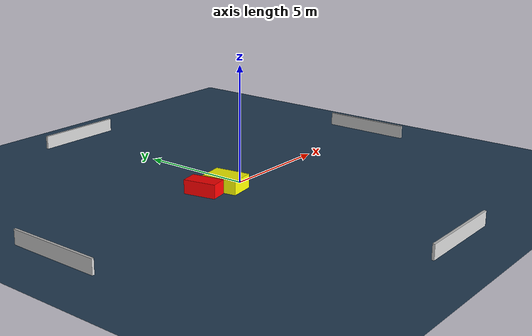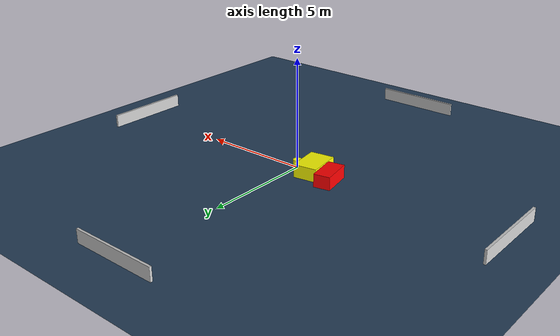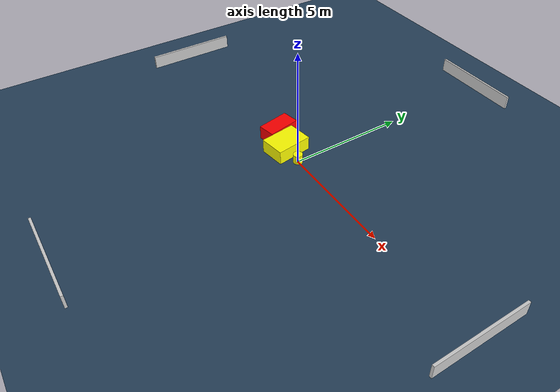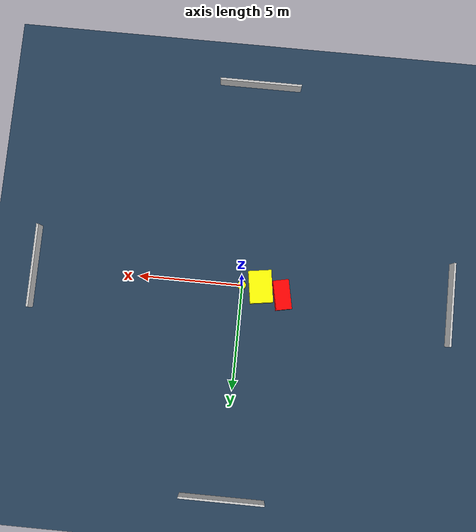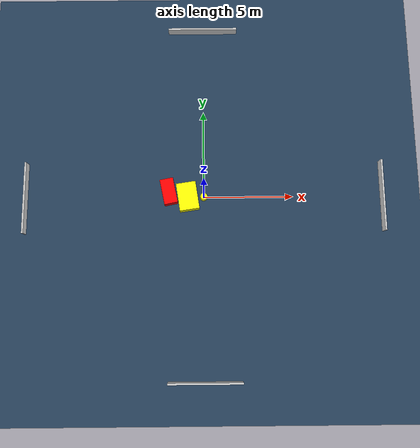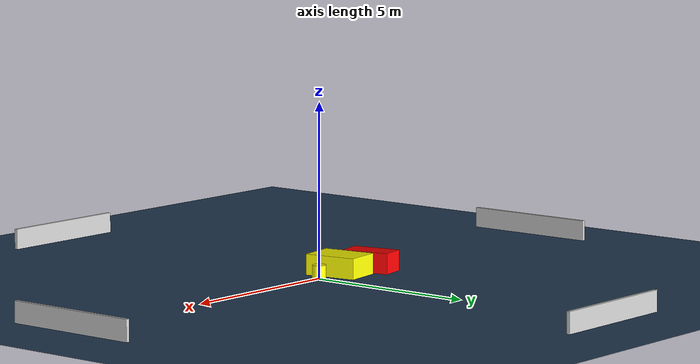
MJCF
<?xml version="1.0" ?>
<mujoco model="generated_environment">
  <option timestep="0.01" integrator="RK4" cone="elliptic"/>
  <default>
    <geom density="1"/>
  </default>
  <asset>
    <texture builtin="gradient" height="3072" name="skybox" rgb1="0.3 0.5 0.7" rgb2="0 0 0" type="skybox" width="512"/>
    <texture builtin="checker" height="300" name="groundplane" rgb1="0.2 0.3 0.4" rgb2="0.1 0.2 0.3" type="2d" width="300"/>
    <material name="groundplane" reflectance="0.2" texrepeat="5 5" texture="groundplane"/>
  </asset>
  <worldbody>
    <light dir="0 0 -1" directional="true" pos="0 0 1.5"/>
    <geom condim="3" friction="0.5 0.005 0.001" material="groundplane" name="floor" pos="0 0 0" size="0 0 0.05" type="plane"/>
    <body name="walls">
      <geom name="wall_1" condim="4" pos="-10.0 0.0 0.3" rgba="0.800000011920929 0.800000011920929 0.800000011920929 1.0" size="0.05 2.0 0.3" type="box"/>
      <geom name="wall_2" condim="4" pos="10.0 0.0 0.3" rgba="0.800000011920929 0.800000011920929 0.800000011920929 1.0" size="0.05 2.0 0.3" type="box"/>
      <geom name="wall_3" condim="4" pos="0.0 -10.0 0.3" rgba="0.800000011920929 0.800000011920929 0.800000011920929 1.0" size="2.0 0.05 0.3" type="box"/>
      <geom name="wall_4" condim="4" pos="0.0 10.0 0.3" rgba="0.800000011920929 0.800000011920929 0.800000011920929 1.0" size="2.0 0.05 0.3" type="box"/>
    </body>
    <body name="robot">
      <joint name="joint_x" type="slide" pos="0 0 0" axis="1 0 0"/>
      <joint name="joint_y" type="slide" pos="0 0 0" axis="0 1 0"/>
      <geom name="robot" type="cylinder" pos="0.0 0.0 0.2" size="0.2 0.2 0.0" mass="5.0" friction="1.0 0.005 0.0001" condim="4" rgba="1.0 1.0 0.0 1.0"/>
    </body>
    <body name="obstacle_1_movable">
      <geom name="obstacle_1_movable" condim="4" pos="-0.9015605955534286 0.0006671026696151678 0.3" euler="0 0 8.450617754805512" friction="0.0 0.005 0.001" rgba="1.0 1.0 0.0 1.0" size="0.5510840290069186 0.7726127228606783 0.3" type="box" mass="0.1"/>
      <joint type="free"/>
    </body>
    <body name="obstacle_2_static">
      <geom name="obstacle_2_static" condim="4" pos="-1.958593488684074 0.2885080266310596 0.3" euler="0 0 101.32533954279565" friction="0.0 0.005 0.001" rgba="1.0 0.0 0.0 1.0" size="0.7076750886420271 0.3771720624279994 0.3" type="box"/>
    </body>
  </worldbody>
  <actuator>
    <motor name="actuator_x" joint="joint_x" gear="1" ctrlrange="-1 1"/>
    <motor name="actuator_y" joint="joint_y" gear="1" ctrlrange="-1 1"/>
  </actuator>
</mujoco>
